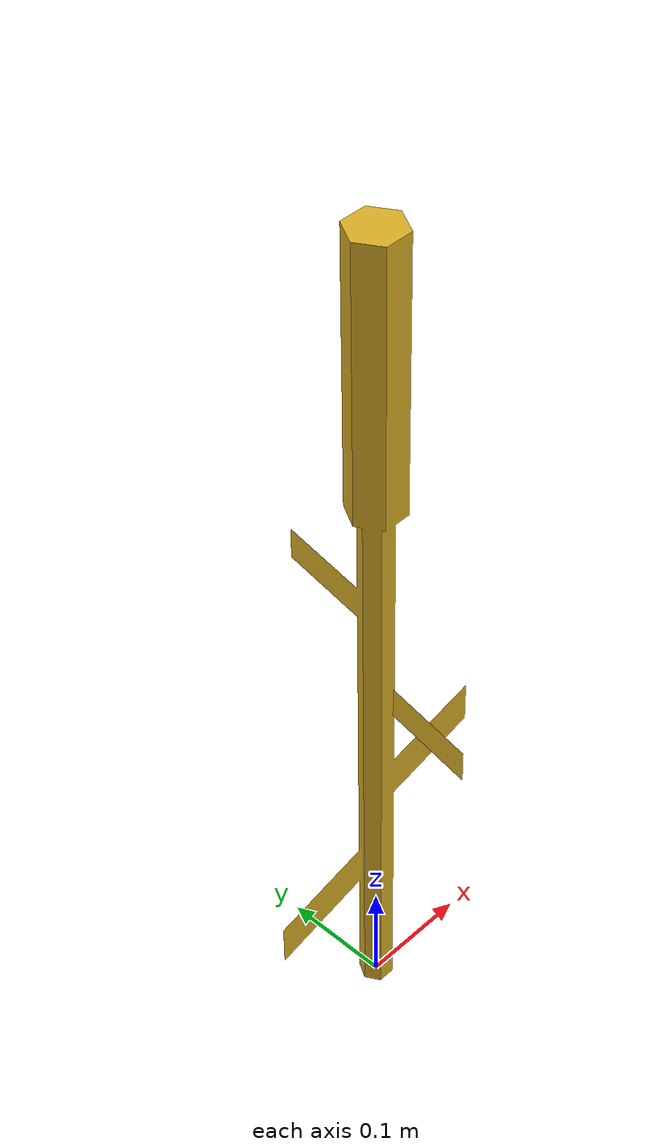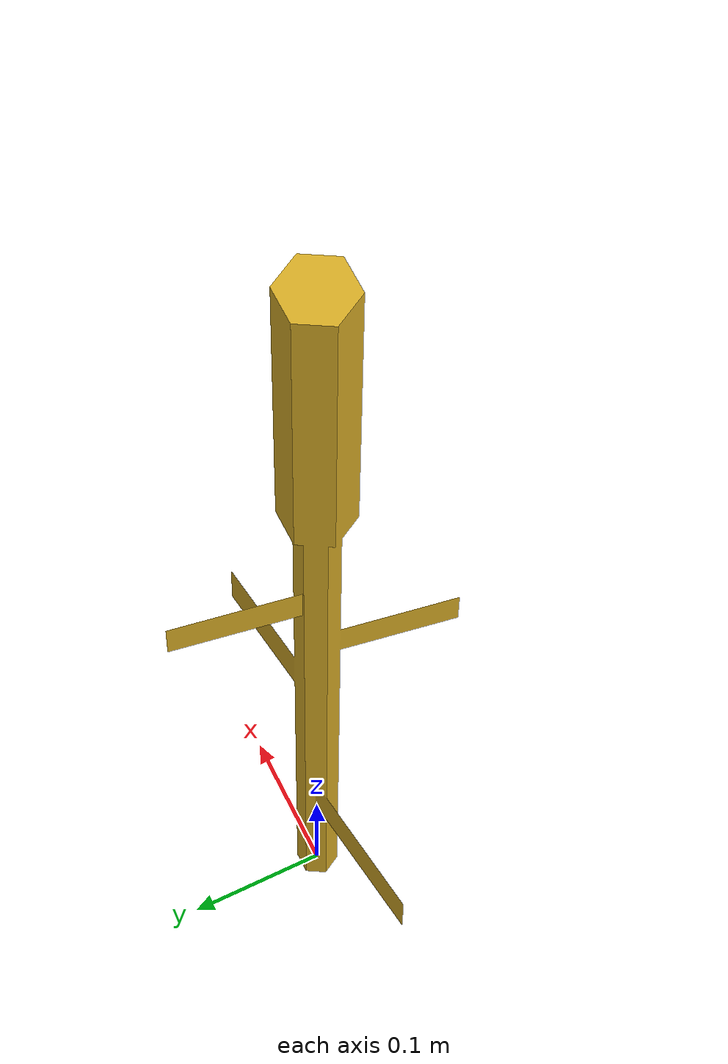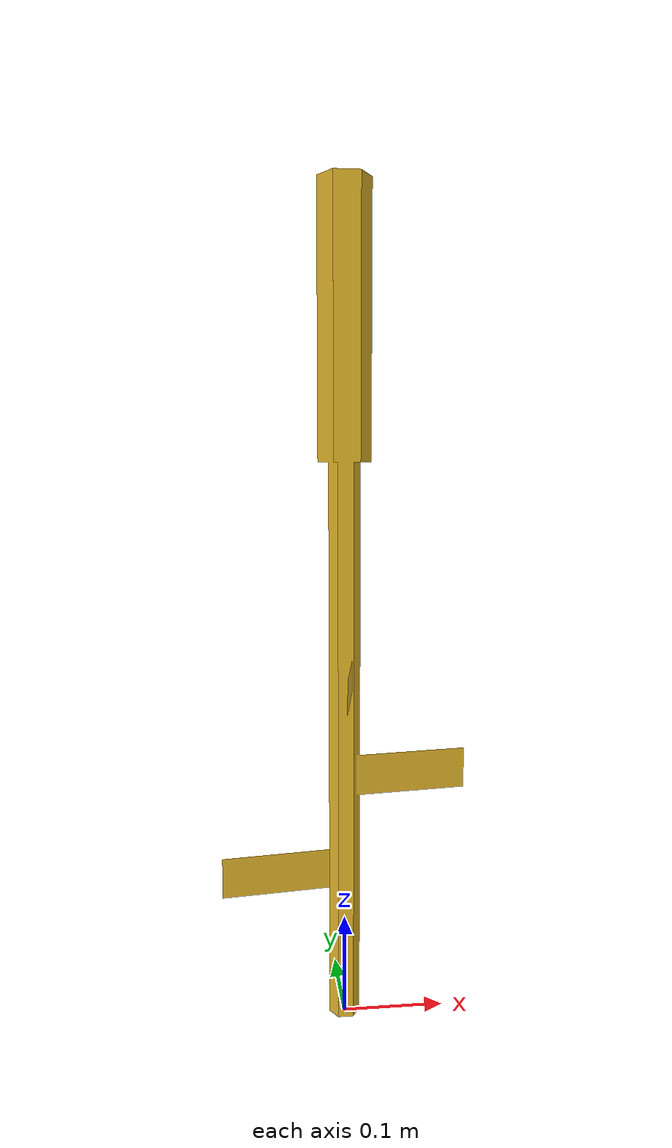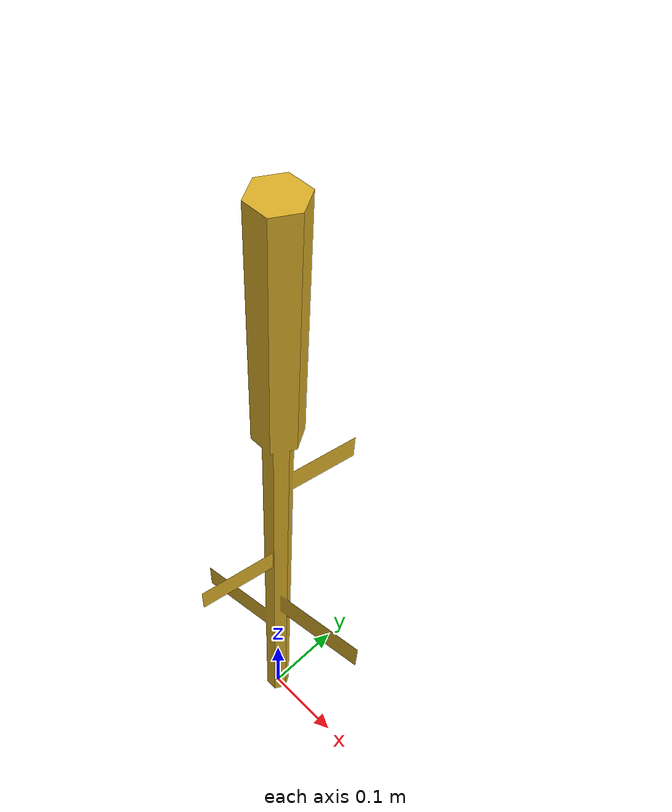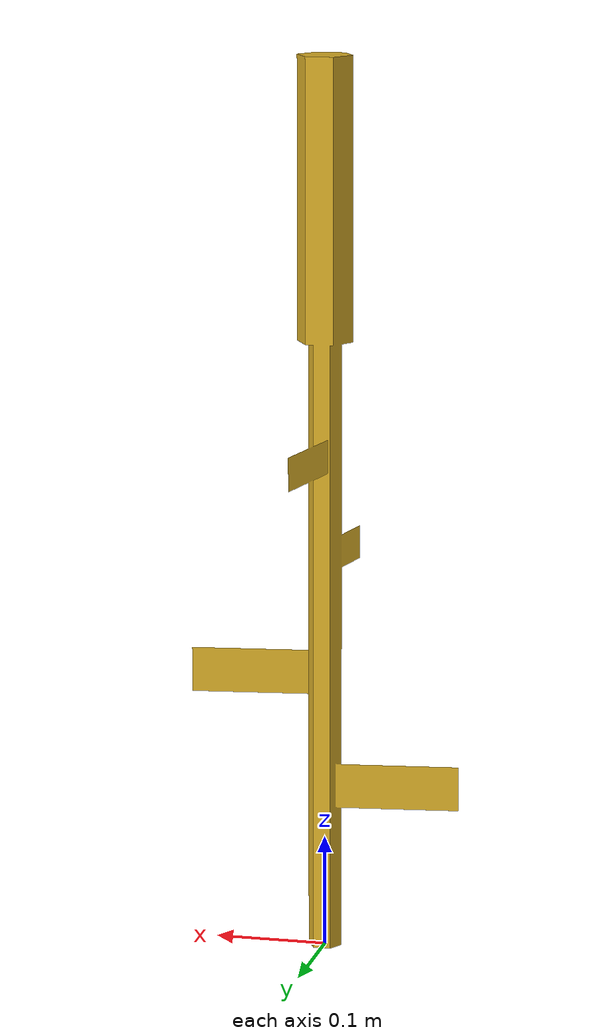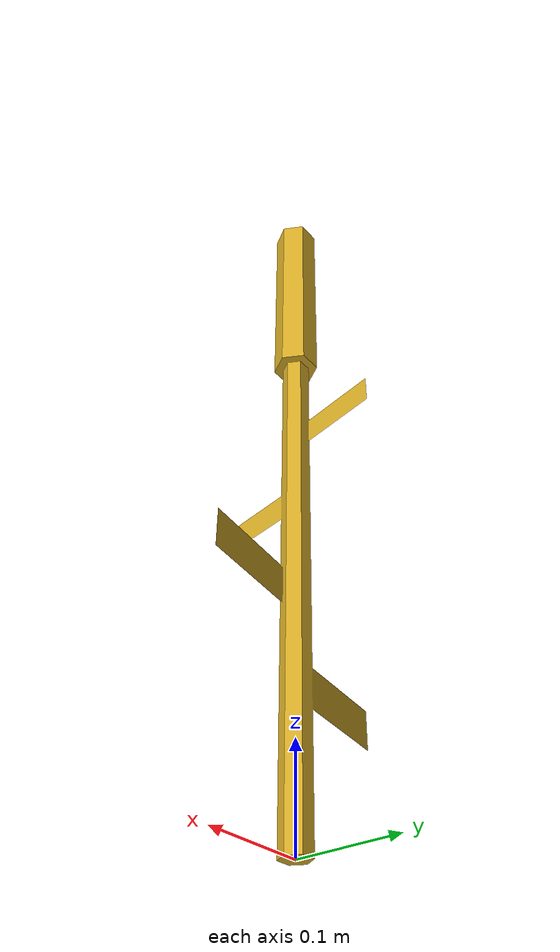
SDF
<?xml version="1.0" ?>
<sdf version="1.9">
  <model name="wheat_plant">
    <static>true</static>
    <link name="link">
      <visual name="visual">
        <cast_shadows>false</cast_shadows>
        <pose>0 0 0 0 0 0</pose>
        <geometry>
          <mesh>
            <uri>model://wheat_plant/meshes/wheat_lowpoly.stl</uri>
            <scale>1 1 1</scale>
          </mesh>
        </geometry>
        <material>
          <ambient>0.6 0.45 0.1 1</ambient>
          <diffuse>0.85 0.68 0.15 1</diffuse>
          <specular>0.1 0.1 0.05 1</specular>
          <pbr>
            <metal>
              <roughness>0.5</roughness>
              <metalness>0.0</metalness>
            </metal>
          </pbr>
        </material>
      </visual>
    </link>
  </model>
</sdf>
